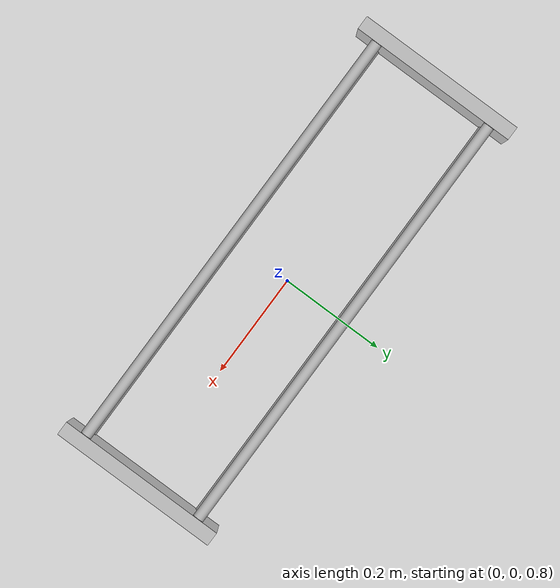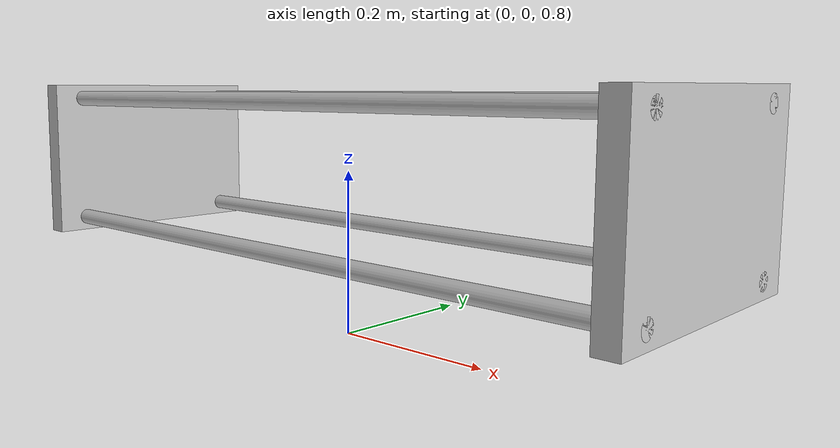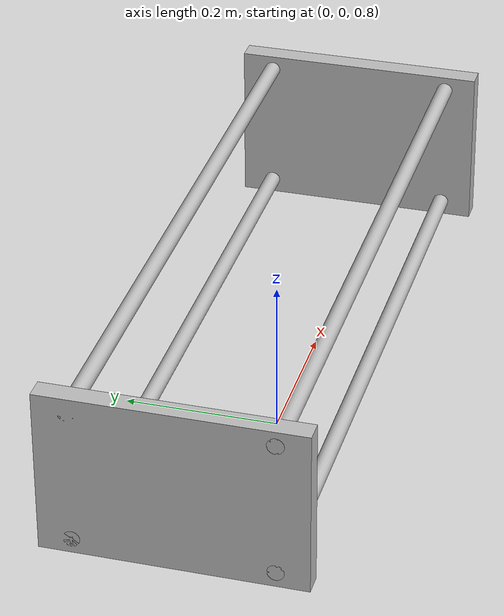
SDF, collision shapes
<?xml version="1.0" ?>

<sdf version='1.6'>
<model name='aidin8'>
<static>false</static>
<pose>0 0 1.0 0 0 0</pose>

<link name='body'>
      <pose>0 0 0 0 0 0</pose>
      <inertial>
      <mass>12.3188555</mass>
      <pose>0.0014274 -0.0022232 -0.0431953 0 0 0</pose>
      <inertia>
        <ixx>0.1104557116459</ixx>
        <ixy>0.0002742627834</ixy>
        <ixz>-0.0007826805716</ixz>
        <iyy>0.2925866863396</iyy>
        <iyz>-0.0018014327089</iyz>
        <izz>0.3259809298915</izz>
      </inertia>
    </inertial>

      <visual name="body_visual">
	<pose>0 0 0 0 0 0</pose>
        <material>
          <ambient>0.752941176470588 0.752941176470588 0.752941176470588 1</ambient>
          <diffuse>0.752941176470588 0.752941176470588 0.752941176470588 1</diffuse>
        </material>
        <geometry>
          <mesh>
            <scale>1 1 1</scale>
            <uri>model://aidin8/meshes/meshes_surface/Body.STL</uri>
          </mesh>
        </geometry>
        <material name="black"/>
      </visual>

      <collision name='body_1'>
        <pose>0.4294 0 0 0 0 0</pose>
        <geometry>
    	  <box>
            <size>0.026 0.318 0.207</size>
          </box>
        </geometry>
	<surface>
            <friction>
              <ode>
                <mu>100.000000</mu>
                <mu2>100.000000</mu2>
              </ode>
            </friction>
          </surface>
      </collision>

      <collision name='body_2'>
        <pose>-0.4294 0 0 0 0 0</pose>
        <geometry>
    	  <box>
            <size>0.026 0.318 0.207</size>
          </box>
        </geometry>
	<surface>
            <friction>
              <ode>
                <mu>100.000000</mu>
                <mu2>100.000000</mu2>
              </ode>
            </friction>
          </surface>
      </collision>

      <collision name='body_3'>
        <pose>0 0.119 0.085 0 1.57079632679 0</pose>
        <geometry>
        <cylinder>
            <length>0.8848</length>
            <radius>0.0102</radius>
          </cylinder>
        </geometry>
	<surface>
            <friction>
              <ode>
                <mu>100.000000</mu>
                <mu2>100.000000</mu2>
              </ode>
            </friction>
          </surface>
      </collision>

      <collision name='body_4'>
        <pose>0 0.119 -0.085 0 1.57079632679 0</pose>
        <geometry>
        <cylinder>
            <length>0.8848</length>
            <radius>0.0102</radius>
          </cylinder>
        </geometry>
	<surface>
            <friction>
              <ode>
                <mu>100.000000</mu>
                <mu2>100.000000</mu2>
              </ode>
            </friction>
          </surface>
      </collision>

      <collision name='body_5'>
        <pose>0 -0.119 0.085 0 1.57079632679 0</pose>
        <geometry>
        <cylinder>
            <length>0.8848</length>
            <radius>0.0102</radius>
          </cylinder>
        </geometry>
	<surface>
            <friction>
              <ode>
                <mu>100.000000</mu>
                <mu2>100.000000</mu2>
              </ode>
            </friction>
          </surface>
      </collision>

      <collision name='body_6'>
        <pose>0 -0.119 -0.085 0 1.57079632679 0</pose>
        <geometry>
        <cylinder>
            <length>0.8848</length>
            <radius>0.0102</radius>
          </cylinder>
        </geometry>
	<surface>
            <friction>
              <ode>
                <mu>100.000000</mu>
                <mu2>100.000000</mu2>
              </ode>
            </friction>
          </surface>
      </collision>
</link>

<!-- ////////////////////////Cameras//////////////////////// -->

<plugin name="ROSaidin8Plugin_multi" filename="libsub_aidin8_multi.so">
</plugin>

</model>
</sdf>
